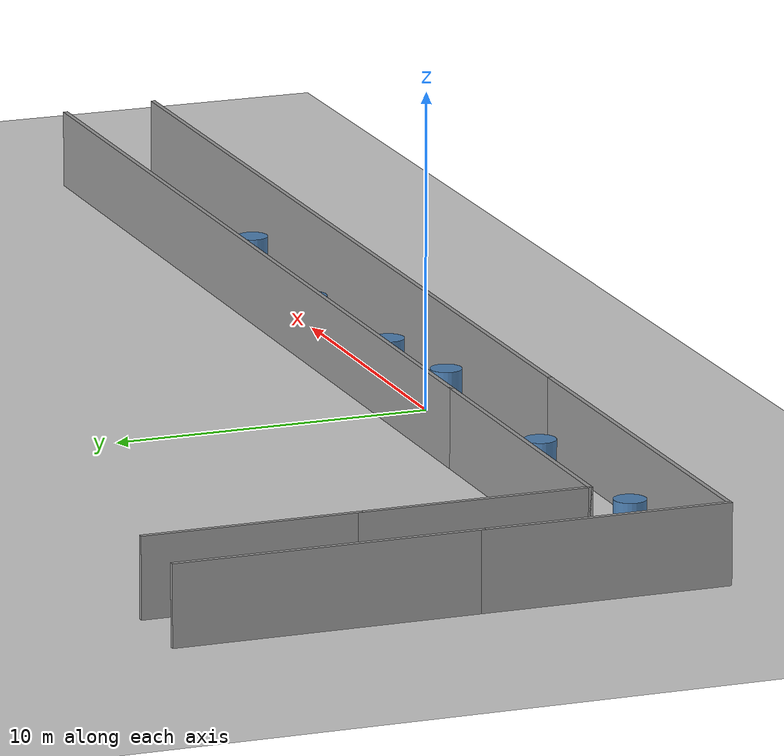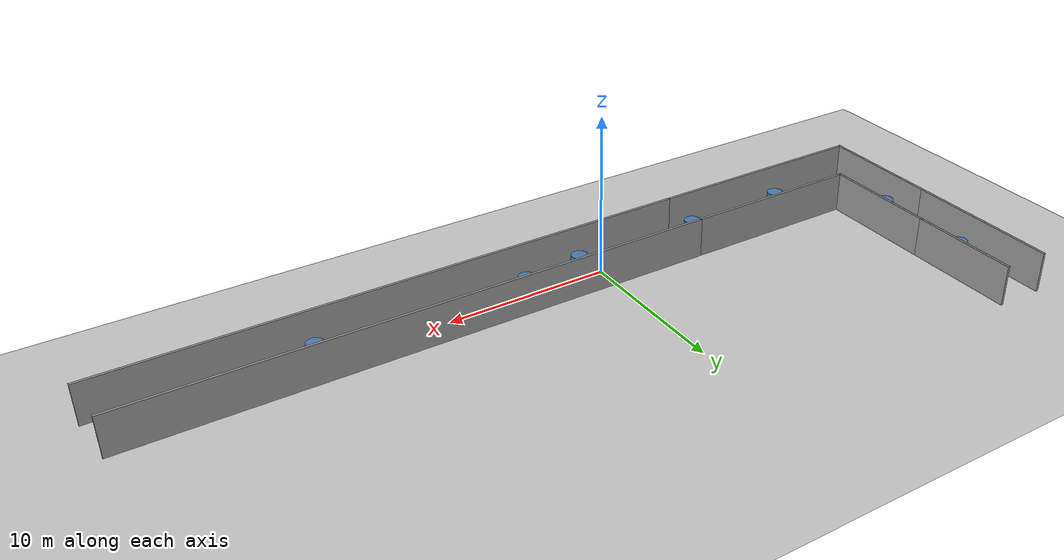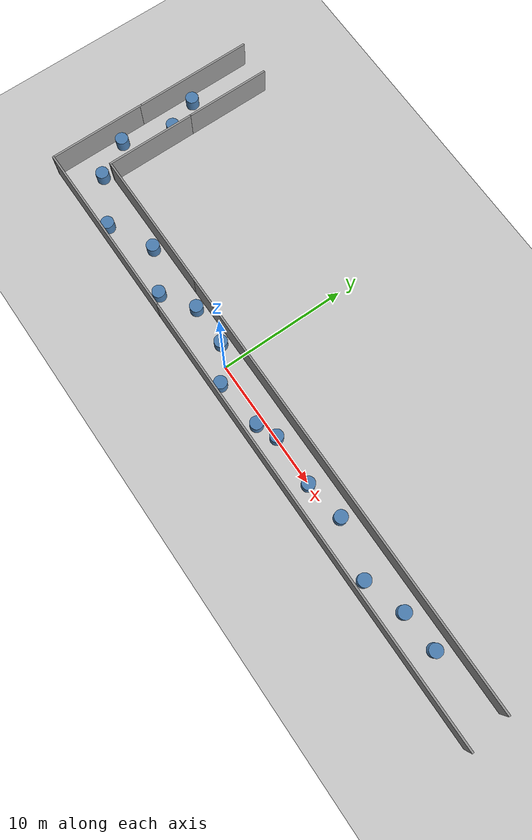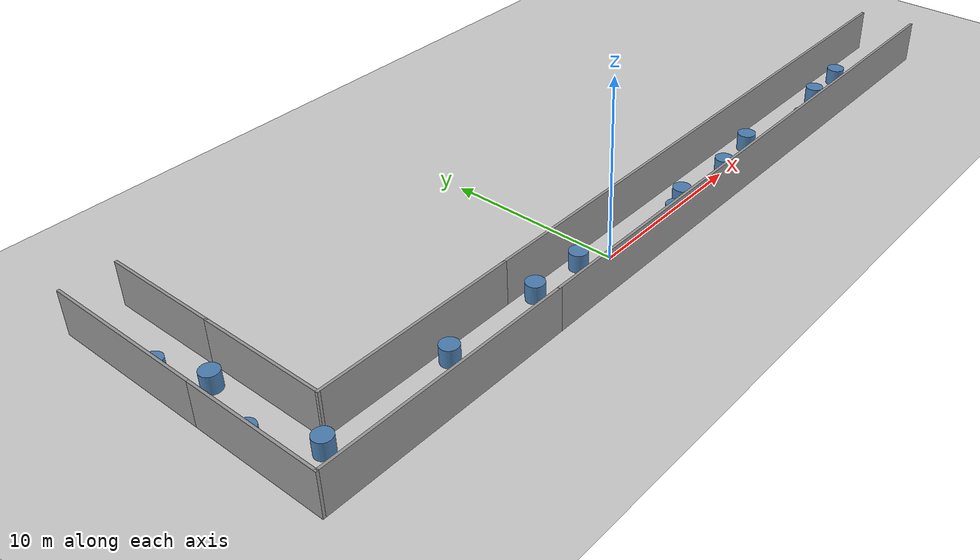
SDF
<sdf version="1.7">
 <world name="default">
  <light name="sun" type="directional">
   <pose>0 0 10 0 -0 0</pose>
   <diffuse>0.8 0.8 0.8 1</diffuse>
   <specular>0.2 0.2 0.2 1</specular>
   <attenuation>
    <range>1000</range>
    <constant>0.9</constant>
    <linear>0.01</linear>
    <quadratic>0.001</quadratic>
   </attenuation>
   <direction>-0.5 0.1 -0.9</direction>
   <spot><inner_angle>0</inner_angle><outer_angle>0</outer_angle><falloff>0</falloff></spot>
  </light>
  <model name="ground_plane">
   <static>1</static>
   <link name="link">
    <collision name="collision">
     <geometry><plane><normal>0 0 1</normal><size>100 100</size></plane></geometry>
     <surface>
      <contact><collide_bitmask>65535</collide_bitmask></contact>
      <friction><ode><mu>100</mu><mu2>50</mu2></ode></friction>
     </surface>
    </collision>
    <visual name="visual">
     <cast_shadows>0</cast_shadows>
     <geometry><plane><normal>0 0 1</normal><size>100 100</size></plane></geometry>
     <material>
      <script><uri>file://media/materials/scripts/gazebo.material</uri><name>Gazebo/Grey</name></script>
     </material>
    </visual>
   </link>
  </model>
  <gravity>0 0 -9.8</gravity>
  <magnetic_field>6e-06 2.3e-05 -4.2e-05</magnetic_field>
  <atmosphere type="adiabatic"/>
  <physics type="ode">
   <max_step_size>0.001</max_step_size>
   <real_time_factor>1</real_time_factor>
   <real_time_update_rate>1000</real_time_update_rate>
  </physics>
  <scene><ambient>0.4 0.4 0.4 1</ambient><background>0.7 0.7 0.7 1</background><shadows>1</shadows></scene>
  <audio><device>default</device></audio>
  <spherical_coordinates>
   <surface_model>EARTH_WGS84</surface_model>
   <latitude_deg>0</latitude_deg>
   <longitude_deg>0</longitude_deg>
   <elevation>0</elevation>
   <heading_deg>0</heading_deg>
  </spherical_coordinates>
  <model name="world2">
   <pose>4.7262 6.81622 0 0 -0 0</pose>
   <link name="Wall_12">
    <collision name="Wall_12_Collision">
     <geometry><box><size>7.75 0.15 2.5</size></box></geometry>
     <pose>0 0 1.25 0 -0 0</pose>
    </collision>
    <visual name="Wall_12_Visual">
     <pose>0 0 1.25 0 -0 0</pose>
     <geometry><box><size>7.75 0.15 2.5</size></box></geometry>
     <material>
      <script><uri>file://media/materials/scripts/gazebo.material</uri><name>Gazebo/Grey</name></script>
      <ambient>1 1 1 1</ambient>
     </material>
     <meta><layer>0</layer></meta>
    </visual>
    <pose>-24.6986 -4.675 0 0 -0 1.5708</pose>
   </link>
   <link name="Wall_14">
    <collision name="Wall_14_Collision">
     <geometry><box><size>11.25 0.15 2.5</size></box></geometry>
     <pose>0 0 1.25 0 -0 0</pose>
    </collision>
    <visual name="Wall_14_Visual">
     <pose>0 0 1.25 0 -0 0</pose>
     <geometry><box><size>11.25 0.15 2.5</size></box></geometry>
     <material>
      <script><uri>file://media/materials/scripts/gazebo.material</uri><name>Gazebo/Grey</name></script>
      <ambient>1 1 1 1</ambient>
     </material>
     <meta><layer>0</layer></meta>
    </visual>
    <pose>-16.3037 -5.29947 0 0 -0 3.14159</pose>
   </link>
   <link name="Wall_16">
    <collision name="Wall_16_Collision">
     <geometry><box><size>7.25 0.15 2.5</size></box></geometry>
     <pose>0 0 1.25 0 -0 0</pose>
    </collision>
    <visual name="Wall_16_Visual">
     <pose>0 0 1.25 0 -0 0</pose>
     <geometry><box><size>7.25 0.15 2.5</size></box></geometry>
     <material>
      <script><uri>file://media/materials/scripts/gazebo.material</uri><name>Gazebo/Grey</name></script>
      <ambient>1 1 1 1</ambient>
     </material>
     <meta><layer>0</layer></meta>
    </visual>
    <pose>-21.8537 -1.74947 0 0 -0 1.5708</pose>
   </link>
   <link name="Wall_18">
    <collision name="Wall_18_Collision">
     <geometry><box><size>9.5 0.15 2.5</size></box></geometry>
     <pose>0 0 1.25 0 -0 0</pose>
    </collision>
    <visual name="Wall_18_Visual">
     <pose>0 0 1.25 0 -0 0</pose>
     <geometry><box><size>9.5 0.15 2.5</size></box></geometry>
     <material>
      <script><uri>file://media/materials/scripts/gazebo.material</uri><name>Gazebo/Grey</name></script>
      <ambient>1 1 1 1</ambient>
     </material>
     <meta><layer>0</layer></meta>
    </visual>
    <pose>-24.6986 3.8 0 0 -0 1.5708</pose>
   </link>
   <link name="Wall_20">
    <collision name="Wall_20_Collision">
     <geometry><box><size>6.75 0.15 2.5</size></box></geometry>
     <pose>0 0 1.25 0 -0 0</pose>
    </collision>
    <visual name="Wall_20_Visual">
     <pose>0 0 1.25 0 -0 0</pose>
     <geometry><box><size>6.75 0.15 2.5</size></box></geometry>
     <material>
      <script><uri>file://media/materials/scripts/gazebo.material</uri><name>Gazebo/Grey</name></script>
      <ambient>1 1 1 1</ambient>
     </material>
     <meta><layer>0</layer></meta>
    </visual>
    <pose>-21.8537 5.10053 0 0 -0 1.5708</pose>
   </link>
   <link name="Wall_24">
    <collision name="Wall_24_Collision">
     <geometry><box><size>35.5 0.15 2.5</size></box></geometry>
     <pose>0 0 1.25 0 -0 0</pose>
    </collision>
    <visual name="Wall_24_Visual">
     <pose>0 0 1.25 0 -0 0</pose>
     <geometry><box><size>35.5 0.15 2.5</size></box></geometry>
     <material>
      <script><uri>file://media/materials/scripts/gazebo.material</uri><name>Gazebo/Grey</name></script>
      <ambient>1 1 1 1</ambient>
     </material>
     <meta><layer>0</layer></meta>
    </visual>
    <pose>7.02355 -8.475 0 0 -0 0</pose>
   </link>
   <link name="Wall_27">
    <collision name="Wall_27_Collision">
     <geometry><box><size>35.25 0.15 2.5</size></box></geometry>
     <pose>0 0 1.25 0 -0 0</pose>
    </collision>
    <visual name="Wall_27_Visual">
     <pose>0 0 1.25 0 -0 0</pose>
     <geometry><box><size>35.25 0.15 2.5</size></box></geometry>
     <material>
      <script><uri>file://media/materials/scripts/gazebo.material</uri><name>Gazebo/Grey</name></script>
      <ambient>1 1 1 1</ambient>
     </material>
     <meta><layer>0</layer></meta>
    </visual>
    <pose>6.79625 -5.29947 0 0 -0 0</pose>
   </link>
   <link name="Wall_9">
    <collision name="Wall_9_Collision">
     <geometry><box><size>14.1971 0.15 2.5</size></box></geometry>
     <pose>0 0 1.25 0 -0 0</pose>
    </collision>
    <visual name="Wall_9_Visual">
     <pose>0 0 1.25 0 -0 0</pose>
     <geometry><box><size>14.1971 0.15 2.5</size></box></geometry>
     <material>
      <script><uri>file://media/materials/scripts/gazebo.material</uri><name>Gazebo/Grey</name></script>
      <ambient>1 1 1 1</ambient>
     </material>
     <meta><layer>0</layer></meta>
    </visual>
    <pose>-17.675 -8.475 0 0 -0 3.14159</pose>
   </link>
   <static>1</static>
  </model>
  <model name="unit_cylinder">
   <link name="link">
    <inertial>
     <mass>1</mass>
     <inertia><ixx>0.145833</ixx><ixy>0</ixy><ixz>0</ixz><iyy>0.145833</iyy><iyz>0</iyz><izz>0.125</izz></inertia>
    </inertial>
    <visual name="visual">
     <geometry><cylinder><radius>0.5</radius><length>1</length></cylinder></geometry>
     <material>
      <script><name>Gazebo/Grey</name><uri>file://media/materials/scripts/gazebo.material</uri></script>
      <shader type="pixel"><normal_map>__default__</normal_map></shader>
      <ambient>0.3 0.5 0.7 1</ambient>
      <diffuse>0.7 0.7 0.7 1</diffuse>
      <specular>0.01 0.01 0.01 1</specular>
      <emissive>0 0 0 1</emissive>
     </material>
    </visual>
    <collision name="collision">
     <geometry><cylinder><radius>0.5</radius><length>1</length></cylinder></geometry>
     <surface>
      <friction>
       <ode><mu>1</mu><mu2>1</mu2><fdir1>0 0 0</fdir1><slip1>0</slip1><slip2>0</slip2></ode>
       <torsional>
        <coefficient>1</coefficient>
        <patch_radius>0</patch_radius>
        <surface_radius>0</surface_radius>
        <use_patch_radius>1</use_patch_radius>
        <ode><slip>0</slip></ode>
       </torsional>
      </friction>
      <bounce><restitution_coefficient>0</restitution_coefficient><threshold>1e+06</threshold></bounce>
      <contact>
       <collide_without_contact>0</collide_without_contact>
       <collide_without_contact_bitmask>1</collide_without_contact_bitmask>
       <collide_bitmask>1</collide_bitmask>
       <ode>
        <soft_cfm>0</soft_cfm>
        <soft_erp>0.2</soft_erp>
        <kp>1e+13</kp>
        <kd>1</kd>
        <max_vel>0.01</max_vel>
        <min_depth>0</min_depth>
       </ode>
       <bullet>
        <split_impulse>1</split_impulse>
        <split_impulse_penetration_threshold>-0.01</split_impulse_penetration_threshold>
        <soft_cfm>0</soft_cfm>
        <soft_erp>0.2</soft_erp>
        <kp>1e+13</kp>
        <kd>1</kd>
       </bullet>
      </contact>
     </surface>
    </collision>
   </link>
   <static>0</static>
   <pose>-19.2134 9.945 0.499991 0 -0 0</pose>
  </model>
  <model name="unit_cylinder_0">
   <link name="link">
    <inertial>
     <mass>1</mass>
     <inertia><ixx>0.145833</ixx><ixy>0</ixy><ixz>0</ixz><iyy>0.145833</iyy><iyz>0</iyz><izz>0.125</izz></inertia>
    </inertial>
    <visual name="visual">
     <geometry><cylinder><radius>0.5</radius><length>1</length></cylinder></geometry>
     <material>
      <script><name>Gazebo/Grey</name><uri>file://media/materials/scripts/gazebo.material</uri></script>
      <shader type="pixel"><normal_map>__default__</normal_map></shader>
      <ambient>0.3 0.5 0.7 1</ambient>
      <diffuse>0.7 0.7 0.7 1</diffuse>
      <specular>0.01 0.01 0.01 1</specular>
      <emissive>0 0 0 1</emissive>
     </material>
    </visual>
    <collision name="collision">
     <geometry><cylinder><radius>0.5</radius><length>1</length></cylinder></geometry>
     <surface>
      <friction>
       <ode><mu>1</mu><mu2>1</mu2><fdir1>0 0 0</fdir1><slip1>0</slip1><slip2>0</slip2></ode>
       <torsional>
        <coefficient>1</coefficient>
        <patch_radius>0</patch_radius>
        <surface_radius>0</surface_radius>
        <use_patch_radius>1</use_patch_radius>
        <ode><slip>0</slip></ode>
       </torsional>
      </friction>
      <bounce><restitution_coefficient>0</restitution_coefficient><threshold>1e+06</threshold></bounce>
      <contact>
       <collide_without_contact>0</collide_without_contact>
       <collide_without_contact_bitmask>1</collide_without_contact_bitmask>
       <collide_bitmask>1</collide_bitmask>
       <ode>
        <soft_cfm>0</soft_cfm>
        <soft_erp>0.2</soft_erp>
        <kp>1e+13</kp>
        <kd>1</kd>
        <max_vel>0.01</max_vel>
        <min_depth>0</min_depth>
       </ode>
       <bullet>
        <split_impulse>1</split_impulse>
        <split_impulse_penetration_threshold>-0.01</split_impulse_penetration_threshold>
        <soft_cfm>0</soft_cfm>
        <soft_erp>0.2</soft_erp>
        <kp>1e+13</kp>
        <kd>1</kd>
       </bullet>
      </contact>
     </surface>
    </collision>
   </link>
   <static>0</static>
   <pose>-18.1442 7.45557 0.5 0 -0 0</pose>
  </model>
  <model name="unit_cylinder_1">
   <link name="link">
    <inertial>
     <mass>1</mass>
     <inertia><ixx>0.145833</ixx><ixy>0</ixy><ixz>0</ixz><iyy>0.145833</iyy><iyz>0</iyz><izz>0.125</izz></inertia>
    </inertial>
    <visual name="visual">
     <geometry><cylinder><radius>0.5</radius><length>1</length></cylinder></geometry>
     <material>
      <script><name>Gazebo/Grey</name><uri>file://media/materials/scripts/gazebo.material</uri></script>
      <shader type="pixel"><normal_map>__default__</normal_map></shader>
      <ambient>0.3 0.5 0.7 1</ambient>
      <diffuse>0.7 0.7 0.7 1</diffuse>
      <specular>0.01 0.01 0.01 1</specular>
      <emissive>0 0 0 1</emissive>
     </material>
    </visual>
    <collision name="collision">
     <geometry><cylinder><radius>0.5</radius><length>1</length></cylinder></geometry>
     <surface>
      <friction>
       <ode><mu>1</mu><mu2>1</mu2><fdir1>0 0 0</fdir1><slip1>0</slip1><slip2>0</slip2></ode>
       <torsional>
        <coefficient>1</coefficient>
        <patch_radius>0</patch_radius>
        <surface_radius>0</surface_radius>
        <use_patch_radius>1</use_patch_radius>
        <ode><slip>0</slip></ode>
       </torsional>
      </friction>
      <bounce><restitution_coefficient>0</restitution_coefficient><threshold>1e+06</threshold></bounce>
      <contact>
       <collide_without_contact>0</collide_without_contact>
       <collide_without_contact_bitmask>1</collide_without_contact_bitmask>
       <collide_bitmask>1</collide_bitmask>
       <ode>
        <soft_cfm>0</soft_cfm>
        <soft_erp>0.2</soft_erp>
        <kp>1e+13</kp>
        <kd>1</kd>
        <max_vel>0.01</max_vel>
        <min_depth>0</min_depth>
       </ode>
       <bullet>
        <split_impulse>1</split_impulse>
        <split_impulse_penetration_threshold>-0.01</split_impulse_penetration_threshold>
        <soft_cfm>0</soft_cfm>
        <soft_erp>0.2</soft_erp>
        <kp>1e+13</kp>
        <kd>1</kd>
       </bullet>
      </contact>
     </surface>
    </collision>
   </link>
   <static>0</static>
   <pose>-19.2961 3.59476 0.499991 0 -0 0</pose>
  </model>
  <model name="unit_cylinder_2">
   <link name="link">
    <inertial>
     <mass>1</mass>
     <inertia><ixx>0.145833</ixx><ixy>0</ixy><ixz>0</ixz><iyy>0.145833</iyy><iyz>0</iyz><izz>0.125</izz></inertia>
    </inertial>
    <visual name="visual">
     <geometry><cylinder><radius>0.5</radius><length>1</length></cylinder></geometry>
     <material>
      <script><name>Gazebo/Grey</name><uri>file://media/materials/scripts/gazebo.material</uri></script>
      <shader type="pixel"><normal_map>__default__</normal_map></shader>
      <ambient>0.3 0.5 0.7 1</ambient>
      <diffuse>0.7 0.7 0.7 1</diffuse>
      <specular>0.01 0.01 0.01 1</specular>
      <emissive>0 0 0 1</emissive>
     </material>
    </visual>
    <collision name="collision">
     <geometry><cylinder><radius>0.5</radius><length>1</length></cylinder></geometry>
     <surface>
      <friction>
       <ode><mu>1</mu><mu2>1</mu2><fdir1>0 0 0</fdir1><slip1>0</slip1><slip2>0</slip2></ode>
       <torsional>
        <coefficient>1</coefficient>
        <patch_radius>0</patch_radius>
        <surface_radius>0</surface_radius>
        <use_patch_radius>1</use_patch_radius>
        <ode><slip>0</slip></ode>
       </torsional>
      </friction>
      <bounce><restitution_coefficient>0</restitution_coefficient><threshold>1e+06</threshold></bounce>
      <contact>
       <collide_without_contact>0</collide_without_contact>
       <collide_without_contact_bitmask>1</collide_without_contact_bitmask>
       <collide_bitmask>1</collide_bitmask>
       <ode>
        <soft_cfm>0</soft_cfm>
        <soft_erp>0.2</soft_erp>
        <kp>1e+13</kp>
        <kd>1</kd>
        <max_vel>0.01</max_vel>
        <min_depth>0</min_depth>
       </ode>
       <bullet>
        <split_impulse>1</split_impulse>
        <split_impulse_penetration_threshold>-0.01</split_impulse_penetration_threshold>
        <soft_cfm>0</soft_cfm>
        <soft_erp>0.2</soft_erp>
        <kp>1e+13</kp>
        <kd>1</kd>
       </bullet>
      </contact>
     </surface>
    </collision>
   </link>
   <static>0</static>
   <pose>-17.6948 0.838775 0.5 0 -0 0</pose>
  </model>
  <model name="unit_cylinder_3">
   <link name="link">
    <inertial>
     <mass>1</mass>
     <inertia><ixx>0.145833</ixx><ixy>0</ixy><ixz>0</ixz><iyy>0.145833</iyy><iyz>0</iyz><izz>0.125</izz></inertia>
    </inertial>
    <visual name="visual">
     <geometry><cylinder><radius>0.5</radius><length>1</length></cylinder></geometry>
     <material>
      <script><name>Gazebo/Grey</name><uri>file://media/materials/scripts/gazebo.material</uri></script>
      <shader type="pixel"><normal_map>__default__</normal_map></shader>
      <ambient>0.3 0.5 0.7 1</ambient>
      <diffuse>0.7 0.7 0.7 1</diffuse>
      <specular>0.01 0.01 0.01 1</specular>
      <emissive>0 0 0 1</emissive>
     </material>
    </visual>
    <collision name="collision">
     <geometry><cylinder><radius>0.5</radius><length>1</length></cylinder></geometry>
     <surface>
      <friction>
       <ode><mu>1</mu><mu2>1</mu2><fdir1>0 0 0</fdir1><slip1>0</slip1><slip2>0</slip2></ode>
       <torsional>
        <coefficient>1</coefficient>
        <patch_radius>0</patch_radius>
        <surface_radius>0</surface_radius>
        <use_patch_radius>1</use_patch_radius>
        <ode><slip>0</slip></ode>
       </torsional>
      </friction>
      <bounce><restitution_coefficient>0</restitution_coefficient><threshold>1e+06</threshold></bounce>
      <contact>
       <collide_without_contact>0</collide_without_contact>
       <collide_without_contact_bitmask>1</collide_without_contact_bitmask>
       <collide_bitmask>1</collide_bitmask>
       <ode>
        <soft_cfm>0</soft_cfm>
        <soft_erp>0.2</soft_erp>
        <kp>1e+13</kp>
        <kd>1</kd>
        <max_vel>0.01</max_vel>
        <min_depth>0</min_depth>
       </ode>
       <bullet>
        <split_impulse>1</split_impulse>
        <split_impulse_penetration_threshold>-0.01</split_impulse_penetration_threshold>
        <soft_cfm>0</soft_cfm>
        <soft_erp>0.2</soft_erp>
        <kp>1e+13</kp>
        <kd>1</kd>
       </bullet>
      </contact>
     </surface>
    </collision>
   </link>
   <static>0</static>
   <pose>-13.9993 -1.01468 0.499991 0 -0 0</pose>
  </model>
  <model name="unit_cylinder_4">
   <link name="link">
    <inertial>
     <mass>1</mass>
     <inertia><ixx>0.145833</ixx><ixy>0</ixy><ixz>0</ixz><iyy>0.145833</iyy><iyz>0</iyz><izz>0.125</izz></inertia>
    </inertial>
    <visual name="visual">
     <geometry><cylinder><radius>0.5</radius><length>1</length></cylinder></geometry>
     <material>
      <script><name>Gazebo/Grey</name><uri>file://media/materials/scripts/gazebo.material</uri></script>
      <shader type="pixel"><normal_map>__default__</normal_map></shader>
      <ambient>0.3 0.5 0.7 1</ambient>
      <diffuse>0.7 0.7 0.7 1</diffuse>
      <specular>0.01 0.01 0.01 1</specular>
      <emissive>0 0 0 1</emissive>
     </material>
    </visual>
    <collision name="collision">
     <geometry><cylinder><radius>0.5</radius><length>1</length></cylinder></geometry>
     <surface>
      <friction>
       <ode><mu>1</mu><mu2>1</mu2><fdir1>0 0 0</fdir1><slip1>0</slip1><slip2>0</slip2></ode>
       <torsional>
        <coefficient>1</coefficient>
        <patch_radius>0</patch_radius>
        <surface_radius>0</surface_radius>
        <use_patch_radius>1</use_patch_radius>
        <ode><slip>0</slip></ode>
       </torsional>
      </friction>
      <bounce><restitution_coefficient>0</restitution_coefficient><threshold>1e+06</threshold></bounce>
      <contact>
       <collide_without_contact>0</collide_without_contact>
       <collide_without_contact_bitmask>1</collide_without_contact_bitmask>
       <collide_bitmask>1</collide_bitmask>
       <ode>
        <soft_cfm>0</soft_cfm>
        <soft_erp>0.2</soft_erp>
        <kp>1e+13</kp>
        <kd>1</kd>
        <max_vel>0.01</max_vel>
        <min_depth>0</min_depth>
       </ode>
       <bullet>
        <split_impulse>1</split_impulse>
        <split_impulse_penetration_threshold>-0.01</split_impulse_penetration_threshold>
        <soft_cfm>0</soft_cfm>
        <soft_erp>0.2</soft_erp>
        <kp>1e+13</kp>
        <kd>1</kd>
       </bullet>
      </contact>
     </surface>
    </collision>
   </link>
   <static>0</static>
   <pose>-10.5527 0.758476 0.5 0 -0 0</pose>
  </model>
  <model name="unit_cylinder_5">
   <link name="link">
    <inertial>
     <mass>1</mass>
     <inertia><ixx>0.145833</ixx><ixy>0</ixy><ixz>0</ixz><iyy>0.145833</iyy><iyz>0</iyz><izz>0.125</izz></inertia>
    </inertial>
    <visual name="visual">
     <geometry><cylinder><radius>0.5</radius><length>1</length></cylinder></geometry>
     <material>
      <script><name>Gazebo/Grey</name><uri>file://media/materials/scripts/gazebo.material</uri></script>
      <shader type="pixel"><normal_map>__default__</normal_map></shader>
      <ambient>0.3 0.5 0.7 1</ambient>
      <diffuse>0.7 0.7 0.7 1</diffuse>
      <specular>0.01 0.01 0.01 1</specular>
      <emissive>0 0 0 1</emissive>
     </material>
    </visual>
    <collision name="collision">
     <geometry><cylinder><radius>0.5</radius><length>1</length></cylinder></geometry>
     <surface>
      <friction>
       <ode><mu>1</mu><mu2>1</mu2><fdir1>0 0 0</fdir1><slip1>0</slip1><slip2>0</slip2></ode>
       <torsional>
        <coefficient>1</coefficient>
        <patch_radius>0</patch_radius>
        <surface_radius>0</surface_radius>
        <use_patch_radius>1</use_patch_radius>
        <ode><slip>0</slip></ode>
       </torsional>
      </friction>
      <bounce><restitution_coefficient>0</restitution_coefficient><threshold>1e+06</threshold></bounce>
      <contact>
       <collide_without_contact>0</collide_without_contact>
       <collide_without_contact_bitmask>1</collide_without_contact_bitmask>
       <collide_bitmask>1</collide_bitmask>
       <ode>
        <soft_cfm>0</soft_cfm>
        <soft_erp>0.2</soft_erp>
        <kp>1e+13</kp>
        <kd>1</kd>
        <max_vel>0.01</max_vel>
        <min_depth>0</min_depth>
       </ode>
       <bullet>
        <split_impulse>1</split_impulse>
        <split_impulse_penetration_threshold>-0.01</split_impulse_penetration_threshold>
        <soft_cfm>0</soft_cfm>
        <soft_erp>0.2</soft_erp>
        <kp>1e+13</kp>
        <kd>1</kd>
       </bullet>
      </contact>
     </surface>
    </collision>
   </link>
   <static>0</static>
   <pose>-7.25659 -0.858492 0.499991 0 -0 0</pose>
  </model>
  <model name="unit_cylinder_6">
   <link name="link">
    <inertial>
     <mass>1</mass>
     <inertia><ixx>0.145833</ixx><ixy>0</ixy><ixz>0</ixz><iyy>0.145833</iyy><iyz>0</iyz><izz>0.125</izz></inertia>
    </inertial>
    <visual name="visual">
     <geometry><cylinder><radius>0.5</radius><length>1</length></cylinder></geometry>
     <material>
      <script><name>Gazebo/Grey</name><uri>file://media/materials/scripts/gazebo.material</uri></script>
      <shader type="pixel"><normal_map>__default__</normal_map></shader>
      <ambient>0.3 0.5 0.7 1</ambient>
      <diffuse>0.7 0.7 0.7 1</diffuse>
      <specular>0.01 0.01 0.01 1</specular>
      <emissive>0 0 0 1</emissive>
     </material>
    </visual>
    <collision name="collision">
     <geometry><cylinder><radius>0.5</radius><length>1</length></cylinder></geometry>
     <surface>
      <friction>
       <ode><mu>1</mu><mu2>1</mu2><fdir1>0 0 0</fdir1><slip1>0</slip1><slip2>0</slip2></ode>
       <torsional>
        <coefficient>1</coefficient>
        <patch_radius>0</patch_radius>
        <surface_radius>0</surface_radius>
        <use_patch_radius>1</use_patch_radius>
        <ode><slip>0</slip></ode>
       </torsional>
      </friction>
      <bounce><restitution_coefficient>0</restitution_coefficient><threshold>1e+06</threshold></bounce>
      <contact>
       <collide_without_contact>0</collide_without_contact>
       <collide_without_contact_bitmask>1</collide_without_contact_bitmask>
       <collide_bitmask>1</collide_bitmask>
       <ode>
        <soft_cfm>0</soft_cfm>
        <soft_erp>0.2</soft_erp>
        <kp>1e+13</kp>
        <kd>1</kd>
        <max_vel>0.01</max_vel>
        <min_depth>0</min_depth>
       </ode>
       <bullet>
        <split_impulse>1</split_impulse>
        <split_impulse_penetration_threshold>-0.01</split_impulse_penetration_threshold>
        <soft_cfm>0</soft_cfm>
        <soft_erp>0.2</soft_erp>
        <kp>1e+13</kp>
        <kd>1</kd>
       </bullet>
      </contact>
     </surface>
    </collision>
   </link>
   <static>0</static>
   <pose>-4.78732 0.751221 0.499991 0 -0 0</pose>
  </model>
  <model name="unit_cylinder_7">
   <link name="link">
    <inertial>
     <mass>1</mass>
     <inertia><ixx>0.145833</ixx><ixy>0</ixy><ixz>0</ixz><iyy>0.145833</iyy><iyz>0</iyz><izz>0.125</izz></inertia>
    </inertial>
    <visual name="visual">
     <geometry><cylinder><radius>0.5</radius><length>1</length></cylinder></geometry>
     <material>
      <script><name>Gazebo/Grey</name><uri>file://media/materials/scripts/gazebo.material</uri></script>
      <shader type="pixel"><normal_map>__default__</normal_map></shader>
      <ambient>0.3 0.5 0.7 1</ambient>
      <diffuse>0.7 0.7 0.7 1</diffuse>
      <specular>0.01 0.01 0.01 1</specular>
      <emissive>0 0 0 1</emissive>
     </material>
    </visual>
    <collision name="collision">
     <geometry><cylinder><radius>0.5</radius><length>1</length></cylinder></geometry>
     <surface>
      <friction>
       <ode><mu>1</mu><mu2>1</mu2><fdir1>0 0 0</fdir1><slip1>0</slip1><slip2>0</slip2></ode>
       <torsional>
        <coefficient>1</coefficient>
        <patch_radius>0</patch_radius>
        <surface_radius>0</surface_radius>
        <use_patch_radius>1</use_patch_radius>
        <ode><slip>0</slip></ode>
       </torsional>
      </friction>
      <bounce><restitution_coefficient>0</restitution_coefficient><threshold>1e+06</threshold></bounce>
      <contact>
       <collide_without_contact>0</collide_without_contact>
       <collide_without_contact_bitmask>1</collide_without_contact_bitmask>
       <collide_bitmask>1</collide_bitmask>
       <ode>
        <soft_cfm>0</soft_cfm>
        <soft_erp>0.2</soft_erp>
        <kp>1e+13</kp>
        <kd>1</kd>
        <max_vel>0.01</max_vel>
        <min_depth>0</min_depth>
       </ode>
       <bullet>
        <split_impulse>1</split_impulse>
        <split_impulse_penetration_threshold>-0.01</split_impulse_penetration_threshold>
        <soft_cfm>0</soft_cfm>
        <soft_erp>0.2</soft_erp>
        <kp>1e+13</kp>
        <kd>1</kd>
       </bullet>
      </contact>
     </surface>
    </collision>
   </link>
   <static>0</static>
   <pose>-1.59145 0.714298 0.5 0 -0 0</pose>
  </model>
  <model name="unit_cylinder_8">
   <link name="link">
    <inertial>
     <mass>1</mass>
     <inertia><ixx>0.145833</ixx><ixy>0</ixy><ixz>0</ixz><iyy>0.145833</iyy><iyz>0</iyz><izz>0.125</izz></inertia>
    </inertial>
    <visual name="visual">
     <geometry><cylinder><radius>0.5</radius><length>1</length></cylinder></geometry>
     <material>
      <script><name>Gazebo/Grey</name><uri>file://media/materials/scripts/gazebo.material</uri></script>
      <shader type="pixel"><normal_map>__default__</normal_map></shader>
      <ambient>0.3 0.5 0.7 1</ambient>
      <diffuse>0.7 0.7 0.7 1</diffuse>
      <specular>0.01 0.01 0.01 1</specular>
      <emissive>0 0 0 1</emissive>
     </material>
    </visual>
    <collision name="collision">
     <geometry><cylinder><radius>0.5</radius><length>1</length></cylinder></geometry>
     <surface>
      <friction>
       <ode><mu>1</mu><mu2>1</mu2><fdir1>0 0 0</fdir1><slip1>0</slip1><slip2>0</slip2></ode>
       <torsional>
        <coefficient>1</coefficient>
        <patch_radius>0</patch_radius>
        <surface_radius>0</surface_radius>
        <use_patch_radius>1</use_patch_radius>
        <ode><slip>0</slip></ode>
       </torsional>
      </friction>
      <bounce><restitution_coefficient>0</restitution_coefficient><threshold>1e+06</threshold></bounce>
      <contact>
       <collide_without_contact>0</collide_without_contact>
       <collide_without_contact_bitmask>1</collide_without_contact_bitmask>
       <collide_bitmask>1</collide_bitmask>
       <ode>
        <soft_cfm>0</soft_cfm>
        <soft_erp>0.2</soft_erp>
        <kp>1e+13</kp>
        <kd>1</kd>
        <max_vel>0.01</max_vel>
        <min_depth>0</min_depth>
       </ode>
       <bullet>
        <split_impulse>1</split_impulse>
        <split_impulse_penetration_threshold>-0.01</split_impulse_penetration_threshold>
        <soft_cfm>0</soft_cfm>
        <soft_erp>0.2</soft_erp>
        <kp>1e+13</kp>
        <kd>1</kd>
       </bullet>
      </contact>
     </surface>
    </collision>
   </link>
   <static>0</static>
   <pose>0.91529 -1.00163 0.499991 0 -0 0</pose>
  </model>
  <model name="unit_cylinder_9">
   <link name="link">
    <inertial>
     <mass>1</mass>
     <inertia><ixx>0.145833</ixx><ixy>0</ixy><ixz>0</ixz><iyy>0.145833</iyy><iyz>0</iyz><izz>0.125</izz></inertia>
    </inertial>
    <visual name="visual">
     <geometry><cylinder><radius>0.5</radius><length>1</length></cylinder></geometry>
     <material>
      <script><name>Gazebo/Grey</name><uri>file://media/materials/scripts/gazebo.material</uri></script>
      <shader type="pixel"><normal_map>__default__</normal_map></shader>
      <ambient>0.3 0.5 0.7 1</ambient>
      <diffuse>0.7 0.7 0.7 1</diffuse>
      <specular>0.01 0.01 0.01 1</specular>
      <emissive>0 0 0 1</emissive>
     </material>
    </visual>
    <collision name="collision">
     <geometry><cylinder><radius>0.5</radius><length>1</length></cylinder></geometry>
     <surface>
      <friction>
       <ode><mu>1</mu><mu2>1</mu2><fdir1>0 0 0</fdir1><slip1>0</slip1><slip2>0</slip2></ode>
       <torsional>
        <coefficient>1</coefficient>
        <patch_radius>0</patch_radius>
        <surface_radius>0</surface_radius>
        <use_patch_radius>1</use_patch_radius>
        <ode><slip>0</slip></ode>
       </torsional>
      </friction>
      <bounce><restitution_coefficient>0</restitution_coefficient><threshold>1e+06</threshold></bounce>
      <contact>
       <collide_without_contact>0</collide_without_contact>
       <collide_without_contact_bitmask>1</collide_without_contact_bitmask>
       <collide_bitmask>1</collide_bitmask>
       <ode>
        <soft_cfm>0</soft_cfm>
        <soft_erp>0.2</soft_erp>
        <kp>1e+13</kp>
        <kd>1</kd>
        <max_vel>0.01</max_vel>
        <min_depth>0</min_depth>
       </ode>
       <bullet>
        <split_impulse>1</split_impulse>
        <split_impulse_penetration_threshold>-0.01</split_impulse_penetration_threshold>
        <soft_cfm>0</soft_cfm>
        <soft_erp>0.2</soft_erp>
        <kp>1e+13</kp>
        <kd>1</kd>
       </bullet>
      </contact>
     </surface>
    </collision>
   </link>
   <static>0</static>
   <pose>4.7495 -0.576125 0.5 0 -0 0</pose>
  </model>
  <model name="unit_cylinder_10">
   <link name="link">
    <inertial>
     <mass>1</mass>
     <inertia><ixx>0.145833</ixx><ixy>0</ixy><ixz>0</ixz><iyy>0.145833</iyy><iyz>0</iyz><izz>0.125</izz></inertia>
    </inertial>
    <visual name="visual">
     <geometry><cylinder><radius>0.5</radius><length>1</length></cylinder></geometry>
     <material>
      <script><name>Gazebo/Grey</name><uri>file://media/materials/scripts/gazebo.material</uri></script>
      <shader type="pixel"><normal_map>__default__</normal_map></shader>
      <ambient>0.3 0.5 0.7 1</ambient>
      <diffuse>0.7 0.7 0.7 1</diffuse>
      <specular>0.01 0.01 0.01 1</specular>
      <emissive>0 0 0 1</emissive>
     </material>
    </visual>
    <collision name="collision">
     <geometry><cylinder><radius>0.5</radius><length>1</length></cylinder></geometry>
     <surface>
      <friction>
       <ode><mu>1</mu><mu2>1</mu2><fdir1>0 0 0</fdir1><slip1>0</slip1><slip2>0</slip2></ode>
       <torsional>
        <coefficient>1</coefficient>
        <patch_radius>0</patch_radius>
        <surface_radius>0</surface_radius>
        <use_patch_radius>1</use_patch_radius>
        <ode><slip>0</slip></ode>
       </torsional>
      </friction>
      <bounce><restitution_coefficient>0</restitution_coefficient><threshold>1e+06</threshold></bounce>
      <contact>
       <collide_without_contact>0</collide_without_contact>
       <collide_without_contact_bitmask>1</collide_without_contact_bitmask>
       <collide_bitmask>1</collide_bitmask>
       <ode>
        <soft_cfm>0</soft_cfm>
        <soft_erp>0.2</soft_erp>
        <kp>1e+13</kp>
        <kd>1</kd>
        <max_vel>0.01</max_vel>
        <min_depth>0</min_depth>
       </ode>
       <bullet>
        <split_impulse>1</split_impulse>
        <split_impulse_penetration_threshold>-0.01</split_impulse_penetration_threshold>
        <soft_cfm>0</soft_cfm>
        <soft_erp>0.2</soft_erp>
        <kp>1e+13</kp>
        <kd>1</kd>
       </bullet>
      </contact>
     </surface>
    </collision>
   </link>
   <static>0</static>
   <pose>6.29298 0.047764 0.499991 0 -0 0</pose>
  </model>
  <model name="unit_cylinder_11">
   <link name="link">
    <inertial>
     <mass>1</mass>
     <inertia><ixx>0.145833</ixx><ixy>0</ixy><ixz>0</ixz><iyy>0.145833</iyy><iyz>0</iyz><izz>0.125</izz></inertia>
    </inertial>
    <visual name="visual">
     <geometry><cylinder><radius>0.5</radius><length>1</length></cylinder></geometry>
     <material>
      <script><name>Gazebo/Grey</name><uri>file://media/materials/scripts/gazebo.material</uri></script>
      <shader type="pixel"><normal_map>__default__</normal_map></shader>
      <ambient>0.3 0.5 0.7 1</ambient>
      <diffuse>0.7 0.7 0.7 1</diffuse>
      <specular>0.01 0.01 0.01 1</specular>
      <emissive>0 0 0 1</emissive>
     </material>
    </visual>
    <collision name="collision">
     <geometry><cylinder><radius>0.5</radius><length>1</length></cylinder></geometry>
     <surface>
      <friction>
       <ode><mu>1</mu><mu2>1</mu2><fdir1>0 0 0</fdir1><slip1>0</slip1><slip2>0</slip2></ode>
       <torsional>
        <coefficient>1</coefficient>
        <patch_radius>0</patch_radius>
        <surface_radius>0</surface_radius>
        <use_patch_radius>1</use_patch_radius>
        <ode><slip>0</slip></ode>
       </torsional>
      </friction>
      <bounce><restitution_coefficient>0</restitution_coefficient><threshold>1e+06</threshold></bounce>
      <contact>
       <collide_without_contact>0</collide_without_contact>
       <collide_without_contact_bitmask>1</collide_without_contact_bitmask>
       <collide_bitmask>1</collide_bitmask>
       <ode>
        <soft_cfm>0</soft_cfm>
        <soft_erp>0.2</soft_erp>
        <kp>1e+13</kp>
        <kd>1</kd>
        <max_vel>0.01</max_vel>
        <min_depth>0</min_depth>
       </ode>
       <bullet>
        <split_impulse>1</split_impulse>
        <split_impulse_penetration_threshold>-0.01</split_impulse_penetration_threshold>
        <soft_cfm>0</soft_cfm>
        <soft_erp>0.2</soft_erp>
        <kp>1e+13</kp>
        <kd>1</kd>
       </bullet>
      </contact>
     </surface>
    </collision>
   </link>
   <static>0</static>
   <pose>10.2033 -0.063485 0.5 0 -0 0</pose>
  </model>
  <model name="unit_cylinder_12">
   <link name="link">
    <inertial>
     <mass>1</mass>
     <inertia><ixx>0.145833</ixx><ixy>0</ixy><ixz>0</ixz><iyy>0.145833</iyy><iyz>0</iyz><izz>0.125</izz></inertia>
    </inertial>
    <visual name="visual">
     <geometry><cylinder><radius>0.5</radius><length>1</length></cylinder></geometry>
     <material>
      <script><name>Gazebo/Grey</name><uri>file://media/materials/scripts/gazebo.material</uri></script>
      <shader type="pixel"><normal_map>__default__</normal_map></shader>
      <ambient>0.3 0.5 0.7 1</ambient>
      <diffuse>0.7 0.7 0.7 1</diffuse>
      <specular>0.01 0.01 0.01 1</specular>
      <emissive>0 0 0 1</emissive>
     </material>
    </visual>
    <collision name="collision">
     <geometry><cylinder><radius>0.5</radius><length>1</length></cylinder></geometry>
     <surface>
      <friction>
       <ode><mu>1</mu><mu2>1</mu2><fdir1>0 0 0</fdir1><slip1>0</slip1><slip2>0</slip2></ode>
       <torsional>
        <coefficient>1</coefficient>
        <patch_radius>0</patch_radius>
        <surface_radius>0</surface_radius>
        <use_patch_radius>1</use_patch_radius>
        <ode><slip>0</slip></ode>
       </torsional>
      </friction>
      <bounce><restitution_coefficient>0</restitution_coefficient><threshold>1e+06</threshold></bounce>
      <contact>
       <collide_without_contact>0</collide_without_contact>
       <collide_without_contact_bitmask>1</collide_without_contact_bitmask>
       <collide_bitmask>1</collide_bitmask>
       <ode>
        <soft_cfm>0</soft_cfm>
        <soft_erp>0.2</soft_erp>
        <kp>1e+13</kp>
        <kd>1</kd>
        <max_vel>0.01</max_vel>
        <min_depth>0</min_depth>
       </ode>
       <bullet>
        <split_impulse>1</split_impulse>
        <split_impulse_penetration_threshold>-0.01</split_impulse_penetration_threshold>
        <soft_cfm>0</soft_cfm>
        <soft_erp>0.2</soft_erp>
        <kp>1e+13</kp>
        <kd>1</kd>
       </bullet>
      </contact>
     </surface>
    </collision>
   </link>
   <static>0</static>
   <pose>13.2838 0.409026 0.499991 0 -0 0</pose>
  </model>
  <model name="unit_cylinder_13">
   <link name="link">
    <inertial>
     <mass>1</mass>
     <inertia><ixx>0.145833</ixx><ixy>0</ixy><ixz>0</ixz><iyy>0.145833</iyy><iyz>0</iyz><izz>0.125</izz></inertia>
    </inertial>
    <visual name="visual">
     <geometry><cylinder><radius>0.5</radius><length>1</length></cylinder></geometry>
     <material>
      <script><name>Gazebo/Grey</name><uri>file://media/materials/scripts/gazebo.material</uri></script>
      <shader type="pixel"><normal_map>__default__</normal_map></shader>
      <ambient>0.3 0.5 0.7 1</ambient>
      <diffuse>0.7 0.7 0.7 1</diffuse>
      <specular>0.01 0.01 0.01 1</specular>
      <emissive>0 0 0 1</emissive>
     </material>
    </visual>
    <collision name="collision">
     <geometry><cylinder><radius>0.5</radius><length>1</length></cylinder></geometry>
     <surface>
      <friction>
       <ode><mu>1</mu><mu2>1</mu2><fdir1>0 0 0</fdir1><slip1>0</slip1><slip2>0</slip2></ode>
       <torsional>
        <coefficient>1</coefficient>
        <patch_radius>0</patch_radius>
        <surface_radius>0</surface_radius>
        <use_patch_radius>1</use_patch_radius>
        <ode><slip>0</slip></ode>
       </torsional>
      </friction>
      <bounce><restitution_coefficient>0</restitution_coefficient><threshold>1e+06</threshold></bounce>
      <contact>
       <collide_without_contact>0</collide_without_contact>
       <collide_without_contact_bitmask>1</collide_without_contact_bitmask>
       <collide_bitmask>1</collide_bitmask>
       <ode>
        <soft_cfm>0</soft_cfm>
        <soft_erp>0.2</soft_erp>
        <kp>1e+13</kp>
        <kd>1</kd>
        <max_vel>0.01</max_vel>
        <min_depth>0</min_depth>
       </ode>
       <bullet>
        <split_impulse>1</split_impulse>
        <split_impulse_penetration_threshold>-0.01</split_impulse_penetration_threshold>
        <soft_cfm>0</soft_cfm>
        <soft_erp>0.2</soft_erp>
        <kp>1e+13</kp>
        <kd>1</kd>
       </bullet>
      </contact>
     </surface>
    </collision>
   </link>
   <static>0</static>
   <pose>17.514 -0.768944 0.5 0 -0 0</pose>
  </model>
  <model name="unit_cylinder_14">
   <link name="link">
    <inertial>
     <mass>1</mass>
     <inertia><ixx>0.145833</ixx><ixy>0</ixy><ixz>0</ixz><iyy>0.145833</iyy><iyz>0</iyz><izz>0.125</izz></inertia>
    </inertial>
    <visual name="visual">
     <geometry><cylinder><radius>0.5</radius><length>1</length></cylinder></geometry>
     <material>
      <script><name>Gazebo/Grey</name><uri>file://media/materials/scripts/gazebo.material</uri></script>
      <shader type="pixel"><normal_map>__default__</normal_map></shader>
      <ambient>0.3 0.5 0.7 1</ambient>
      <diffuse>0.7 0.7 0.7 1</diffuse>
      <specular>0.01 0.01 0.01 1</specular>
      <emissive>0 0 0 1</emissive>
     </material>
    </visual>
    <collision name="collision">
     <geometry><cylinder><radius>0.5</radius><length>1</length></cylinder></geometry>
     <surface>
      <friction>
       <ode><mu>1</mu><mu2>1</mu2><fdir1>0 0 0</fdir1><slip1>0</slip1><slip2>0</slip2></ode>
       <torsional>
        <coefficient>1</coefficient>
        <patch_radius>0</patch_radius>
        <surface_radius>0</surface_radius>
        <use_patch_radius>1</use_patch_radius>
        <ode><slip>0</slip></ode>
       </torsional>
      </friction>
      <bounce><restitution_coefficient>0</restitution_coefficient><threshold>1e+06</threshold></bounce>
      <contact>
       <collide_without_contact>0</collide_without_contact>
       <collide_without_contact_bitmask>1</collide_without_contact_bitmask>
       <collide_bitmask>1</collide_bitmask>
       <ode>
        <soft_cfm>0</soft_cfm>
        <soft_erp>0.2</soft_erp>
        <kp>1e+13</kp>
        <kd>1</kd>
        <max_vel>0.01</max_vel>
        <min_depth>0</min_depth>
       </ode>
       <bullet>
        <split_impulse>1</split_impulse>
        <split_impulse_penetration_threshold>-0.01</split_impulse_penetration_threshold>
        <soft_cfm>0</soft_cfm>
        <soft_erp>0.2</soft_erp>
        <kp>1e+13</kp>
        <kd>1</kd>
       </bullet>
      </contact>
     </surface>
    </collision>
   </link>
   <static>0</static>
   <pose>20.6489 0.17361 0.499991 0 -0 0</pose>
  </model>
  <model name="unit_cylinder_15">
   <link name="link">
    <inertial>
     <mass>1</mass>
     <inertia><ixx>0.145833</ixx><ixy>0</ixy><ixz>0</ixz><iyy>0.145833</iyy><iyz>0</iyz><izz>0.125</izz></inertia>
    </inertial>
    <visual name="visual">
     <geometry><cylinder><radius>0.5</radius><length>1</length></cylinder></geometry>
     <material>
      <script><name>Gazebo/Grey</name><uri>file://media/materials/scripts/gazebo.material</uri></script>
      <shader type="pixel"><normal_map>__default__</normal_map></shader>
      <ambient>0.3 0.5 0.7 1</ambient>
      <diffuse>0.7 0.7 0.7 1</diffuse>
      <specular>0.01 0.01 0.01 1</specular>
      <emissive>0 0 0 1</emissive>
     </material>
    </visual>
    <collision name="collision">
     <geometry><cylinder><radius>0.5</radius><length>1</length></cylinder></geometry>
     <surface>
      <friction>
       <ode><mu>1</mu><mu2>1</mu2><fdir1>0 0 0</fdir1><slip1>0</slip1><slip2>0</slip2></ode>
       <torsional>
        <coefficient>1</coefficient>
        <patch_radius>0</patch_radius>
        <surface_radius>0</surface_radius>
        <use_patch_radius>1</use_patch_radius>
        <ode><slip>0</slip></ode>
       </torsional>
      </friction>
      <bounce><restitution_coefficient>0</restitution_coefficient><threshold>1e+06</threshold></bounce>
      <contact>
       <collide_without_contact>0</collide_without_contact>
       <collide_without_contact_bitmask>1</collide_without_contact_bitmask>
       <collide_bitmask>1</collide_bitmask>
       <ode>
        <soft_cfm>0</soft_cfm>
        <soft_erp>0.2</soft_erp>
        <kp>1e+13</kp>
        <kd>1</kd>
        <max_vel>0.01</max_vel>
        <min_depth>0</min_depth>
       </ode>
       <bullet>
        <split_impulse>1</split_impulse>
        <split_impulse_penetration_threshold>-0.01</split_impulse_penetration_threshold>
        <soft_cfm>0</soft_cfm>
        <soft_erp>0.2</soft_erp>
        <kp>1e+13</kp>
        <kd>1</kd>
       </bullet>
      </contact>
     </surface>
    </collision>
   </link>
   <static>0</static>
   <pose>23.6815 0.375641 0.5 0 -0 0</pose>
  </model>
 </world>
</sdf>
